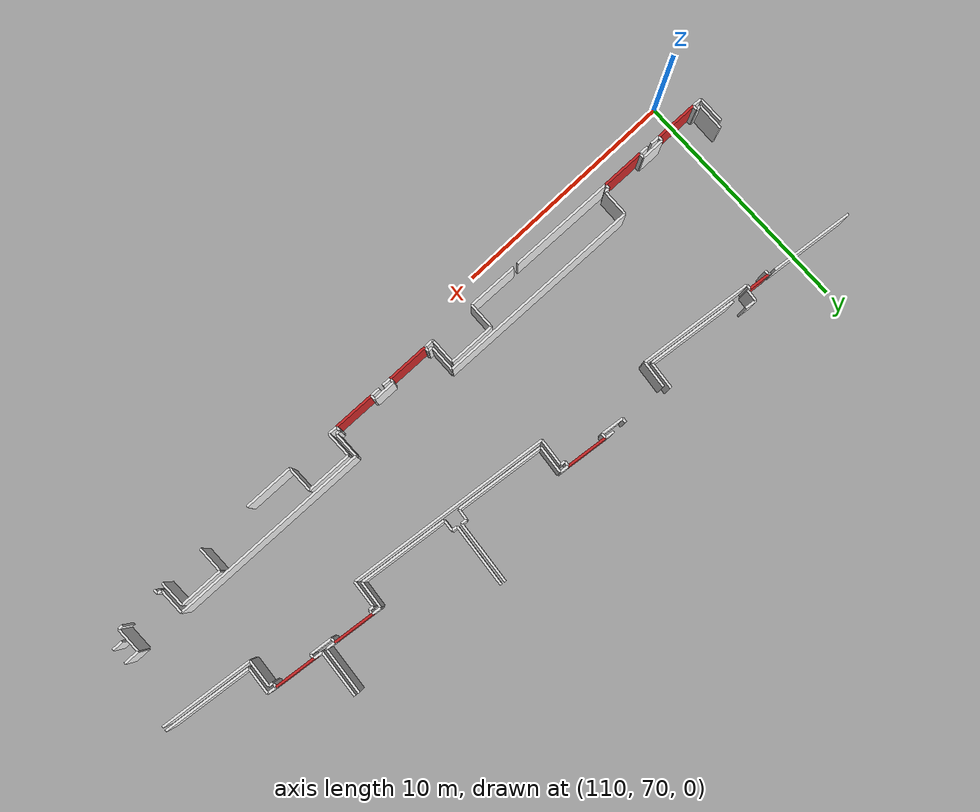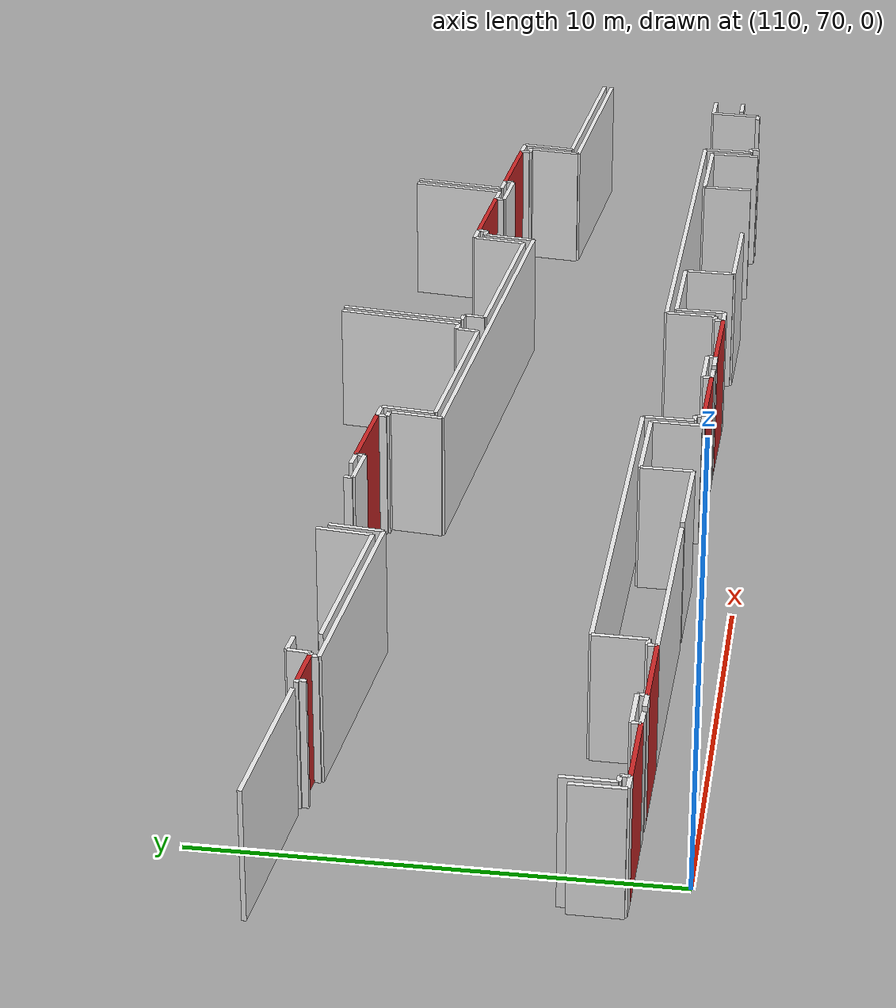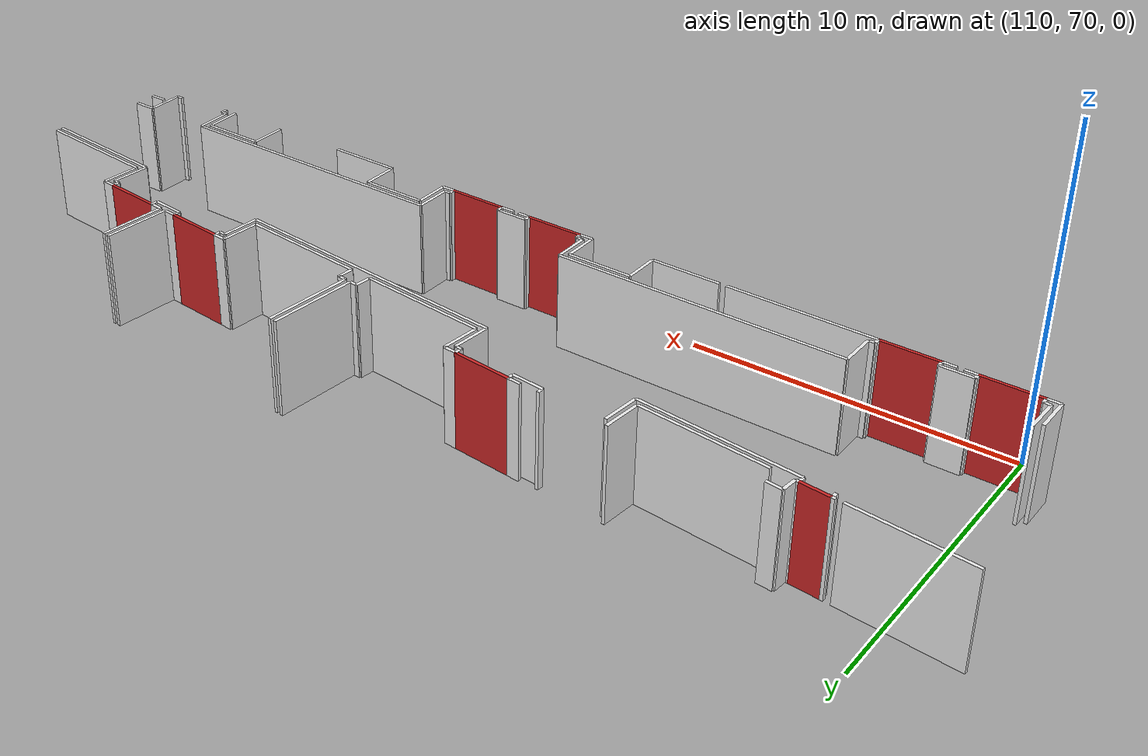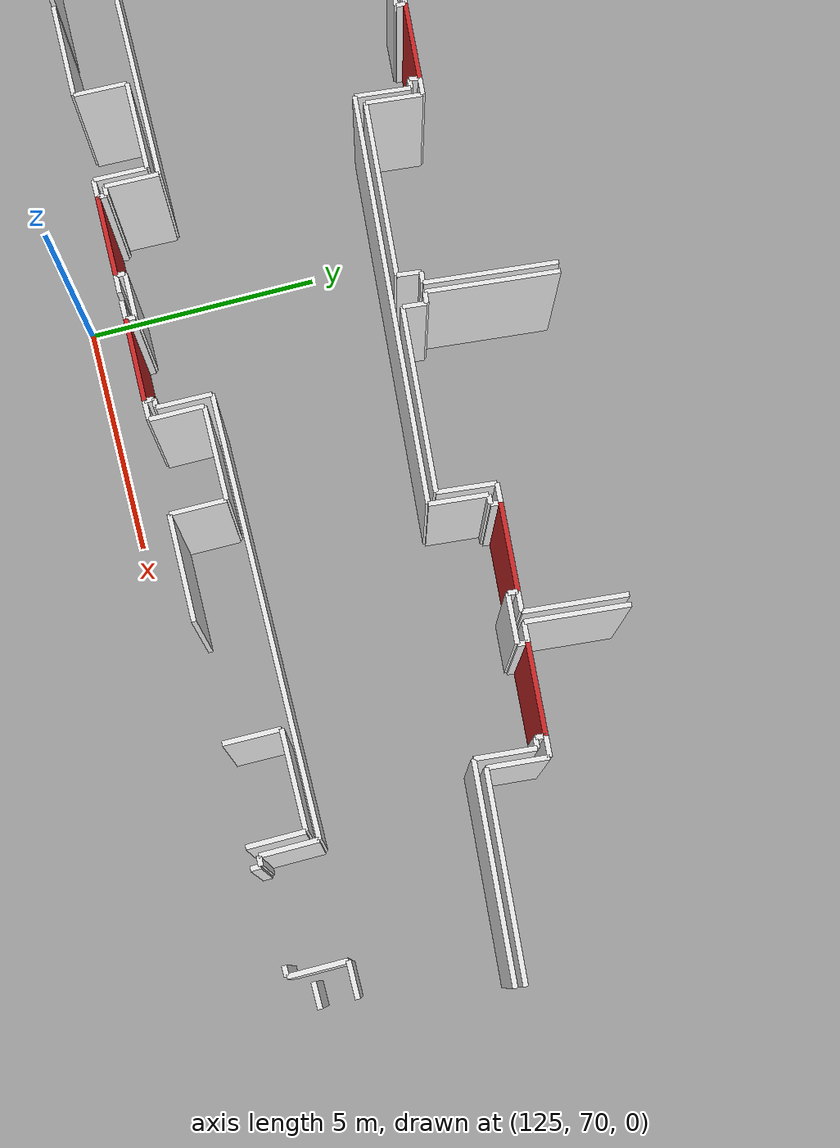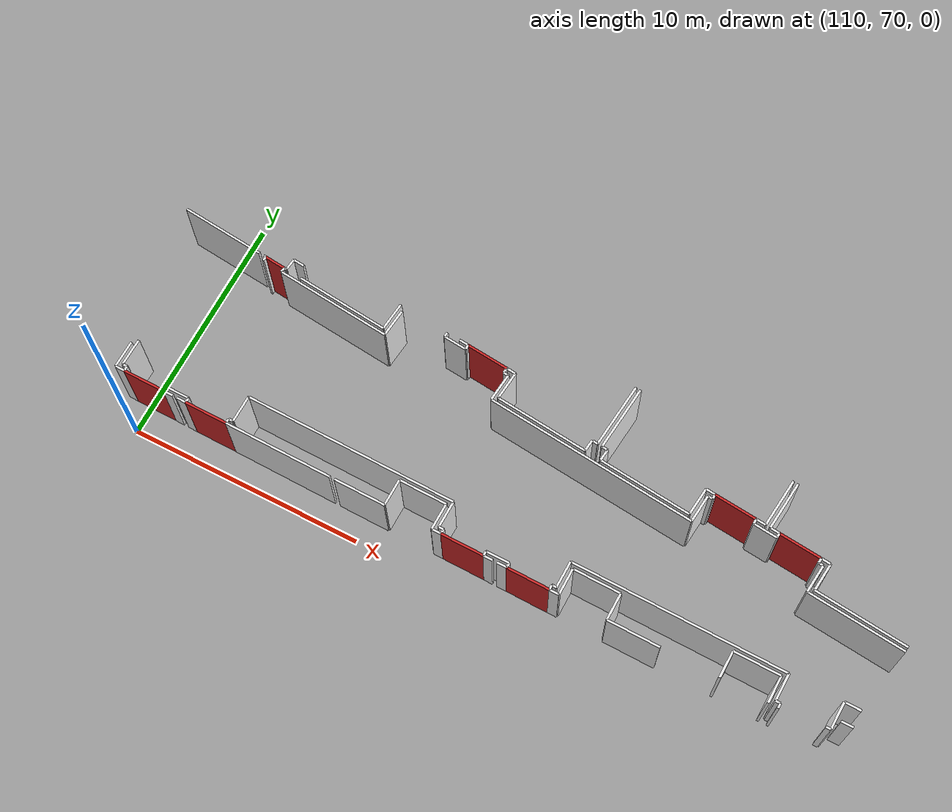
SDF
<sdf version="1.6">
 <world name="default">
  <model name="wall_135.5_76.8">
   <static>true</static>
   <pose>135.49499999999534 76.79000000003725 1.5 0 0 -0.10022174961299568</pose>
   <link name="link">
    <visual name="visual">
     <geometry><box><size>1.799027515083101 0.1 3</size></box></geometry>
     <material>
      <script><uri>file://media/materials/scripts/gazebo.material</uri><name>Gazebo/Red</name></script>
     </material>
    </visual>
   </link>
  </model>
  <model name="wall_132.7_77.1">
   <static>true</static>
   <pose>132.7049999999872 77.07000000006519 1.5 0 0 -0.10022174987377463</pose>
   <link name="link">
    <visual name="visual">
     <geometry><box><size>1.7990275150717767 0.1 3</size></box></geometry>
     <material>
      <script><uri>file://media/materials/scripts/gazebo.material</uri><name>Gazebo/Red</name></script>
     </material>
    </visual>
   </link>
  </model>
  <model name="wall_112.2_77.9">
   <static>true</static>
   <pose>112.1699999999837 77.92500000004657 1.5 0 0 -0.09966865283695012</pose>
   <link name="link">
    <visual name="visual">
     <geometry><box><size>0.9044888059555555 0.1 3</size></box></geometry>
     <material>
      <script><uri>file://media/materials/scripts/gazebo.material</uri><name>Gazebo/Red</name></script>
     </material>
    </visual>
   </link>
  </model>
  <model name="wall_121.5_78.2">
   <static>true</static>
   <pose>121.54000000000815 78.20999999996275 1.5 0 0 -0.09966865232787321</pose>
   <link name="link">
    <visual name="visual">
     <geometry><box><size>1.808977611760522 0.1 3</size></box></geometry>
     <material>
      <script><uri>file://media/materials/scripts/gazebo.material</uri><name>Gazebo/Red</name></script>
     </material>
    </visual>
   </link>
  </model>
  <model name="wall_127.1_71.0">
   <static>true</static>
   <pose>127.05000000001746 70.9550000000745 1.5 0 0 3.1249275297309125</pose>
   <link name="link">
    <visual name="visual">
     <geometry><box><size>1.8002499826340055 0.1 3</size></box></geometry>
     <material>
      <script><uri>file://media/materials/scripts/gazebo.material</uri><name>Gazebo/Red</name></script>
     </material>
    </visual>
   </link>
  </model>
  <model name="wall_124.3_71.0">
   <static>true</static>
   <pose>124.26499999998487 70.98999999999069 1.5 0 0 3.1305433795001205</pose>
   <link name="link">
    <visual name="visual">
     <geometry><box><size>1.810110493862824 0.1 3</size></box></geometry>
     <material>
      <script><uri>file://media/materials/scripts/gazebo.material</uri><name>Gazebo/Red</name></script>
     </material>
    </visual>
   </link>
  </model>
  <model name="wall_113.0_71.1">
   <static>true</static>
   <pose>113.03500000000349 71.13000000012107 1.5 0 0 3.1305433795001205</pose>
   <link name="link">
    <visual name="visual">
     <geometry><box><size>1.810110493862824 0.1 3</size></box></geometry>
     <material>
      <script><uri>file://media/materials/scripts/gazebo.material</uri><name>Gazebo/Red</name></script>
     </material>
    </visual>
   </link>
  </model>
  <model name="wall_110.2_71.2">
   <static>true</static>
   <pose>110.23500000001513 71.17000000015832 1.5 0 0 3.1305433795001205</pose>
   <link name="link">
    <visual name="visual">
     <geometry><box><size>1.810110493862824 0.1 3</size></box></geometry>
     <material>
      <script><uri>file://media/materials/scripts/gazebo.material</uri><name>Gazebo/Red</name></script>
     </material>
    </visual>
   </link>
  </model>
  <model name="wall_134.4_76.9">
   <static>true</static>
   <pose>134.39999999999418 76.89999999990687 1.5 0 0 3.0419240009977764</pose>
   <link name="link">
    <visual name="visual">
     <geometry><box><size>0.4019950248137912 0.1 3</size></box></geometry>
     <material>
      <script><uri>file://media/materials/scripts/gazebo.material</uri><name>Gazebo/White</name></script>
     </material>
    </visual>
   </link>
  </model>
  <model name="wall_134.3_78.0">
   <static>true</static>
   <pose>134.30499999999302 77.95999999996275 1.5 0 0 1.4701757469590804</pose>
   <link name="link">
    <visual name="visual">
     <geometry><box><size>2.090574083904777 0.1 3</size></box></geometry>
     <material>
      <script><uri>file://media/materials/scripts/gazebo.material</uri><name>Gazebo/White</name></script>
     </material>
    </visual>
   </link>
  </model>
  <model name="wall_138.6_75.3">
   <static>true</static>
   <pose>138.63999999998487 75.26000000000931 1.5 0 0 3.0404164645756886</pose>
   <link name="link">
    <visual name="visual">
     <geometry><box><size>3.9602525171943066 0.1 3</size></box></geometry>
     <material>
      <script><uri>file://media/materials/scripts/gazebo.material</uri><name>Gazebo/White</name></script>
     </material>
    </visual>
   </link>
  </model>
  <model name="wall_136.7_76.1">
   <static>true</static>
   <pose>136.72999999998137 76.06000000005588 1.5 0 0 1.4711276743229451</pose>
   <link name="link">
    <visual name="visual">
     <geometry><box><size>1.2059850747193837 0.1 3</size></box></geometry>
     <material>
      <script><uri>file://media/materials/scripts/gazebo.material</uri><name>Gazebo/White</name></script>
     </material>
    </visual>
   </link>
  </model>
  <model name="wall_136.6_76.7">
   <static>true</static>
   <pose>136.5899999999965 76.68000000016764 1.5 0 0 3.0419240009977764</pose>
   <link name="link">
    <visual name="visual">
     <geometry><box><size>0.4019950248137912 0.1 3</size></box></geometry>
     <material>
      <script><uri>file://media/materials/scripts/gazebo.material</uri><name>Gazebo/White</name></script>
     </material>
    </visual>
   </link>
  </model>
  <model name="wall_133.8_77.0">
   <static>true</static>
   <pose>133.79999999998836 76.95999999996275 1.5 0 0 -0.09966865257760905</pose>
   <link name="link">
    <visual name="visual">
     <geometry><box><size>0.40199502487170996 0.1 3</size></box></geometry>
     <material>
      <script><uri>file://media/materials/scripts/gazebo.material</uri><name>Gazebo/White</name></script>
     </material>
    </visual>
   </link>
  </model>
  <model name="wall_134.1_78.0">
   <static>true</static>
   <pose>134.10500000001048 77.97999999998137 1.5 0 0 1.4701757469313783</pose>
   <link name="link">
    <visual name="visual">
     <geometry><box><size>2.0905740839106244 0.1 3</size></box></geometry>
     <material>
      <script><uri>file://media/materials/scripts/gazebo.material</uri><name>Gazebo/White</name></script>
     </material>
    </visual>
   </link>
  </model>
  <model name="wall_127.3_78.3">
   <static>true</static>
   <pose>127.29000000000815 78.31000000005588 1.5 0 0 -1.6711772298577363</pose>
   <link name="link">
    <visual name="visual">
     <geometry><box><size>2.7940651390819315 0.1 3</size></box></geometry>
     <material>
      <script><uri>file://media/materials/scripts/gazebo.material</uri><name>Gazebo/White</name></script>
     </material>
    </visual>
   </link>
  </model>
  <model name="wall_127.3_76.9">
   <static>true</static>
   <pose>127.27500000002328 76.90500000002794 1.5 0 0 -0.11942892521040878</pose>
   <link name="link">
    <visual name="visual">
     <geometry><box><size>0.2517935662158716 0.1 3</size></box></geometry>
     <material>
      <script><uri>file://media/materials/scripts/gazebo.material</uri><name>Gazebo/White</name></script>
     </material>
    </visual>
   </link>
  </model>
  <model name="wall_127.4_76.6">
   <static>true</static>
   <pose>127.375 76.64500000001863 1.5 0 0 -1.6724851786059602</pose>
   <link name="link">
    <visual name="visual">
     <geometry><box><size>0.4925444144680799 0.1 3</size></box></geometry>
     <material>
      <script><uri>file://media/materials/scripts/gazebo.material</uri><name>Gazebo/White</name></script>
     </material>
    </visual>
   </link>
  </model>
  <model name="wall_129.3_76.2">
   <static>true</static>
   <pose>129.31500000000233 76.19999999995343 1.5 0 0 -0.10143187482049365</pose>
   <link name="link">
    <visual name="visual">
     <geometry><box><size>3.9503037858281362 0.1 3</size></box></geometry>
     <material>
      <script><uri>file://media/materials/scripts/gazebo.material</uri><name>Gazebo/White</name></script>
     </material>
    </visual>
   </link>
  </model>
  <model name="wall_131.3_76.6">
   <static>true</static>
   <pose>131.34500000000116 76.60000000009313 1.5 0 0 1.4628838380389488</pose>
   <link name="link">
    <visual name="visual">
     <geometry><box><size>1.2070211267550837 0.1 3</size></box></geometry>
     <material>
      <script><uri>file://media/materials/scripts/gazebo.material</uri><name>Gazebo/White</name></script>
     </material>
    </visual>
   </link>
  </model>
  <model name="wall_131.6_77.2">
   <static>true</static>
   <pose>131.60999999998603 77.18000000016764 1.5 0 0 -0.09966865257760905</pose>
   <link name="link">
    <visual name="visual">
     <geometry><box><size>0.40199502487170996 0.1 3</size></box></geometry>
     <material>
      <script><uri>file://media/materials/scripts/gazebo.material</uri><name>Gazebo/White</name></script>
     </material>
    </visual>
   </link>
  </model>
  <model name="wall_111.7_78.0">
   <static>true</static>
   <pose>111.6699999999837 77.97500000009313 1.5 0 0 -0.09966865030117082</pose>
   <link name="link">
    <visual name="visual">
     <geometry><box><size>0.10049875616580058 0.1 3</size></box></geometry>
     <material>
      <script><uri>file://media/materials/scripts/gazebo.material</uri><name>Gazebo/White</name></script>
     </material>
    </visual>
   </link>
  </model>
  <model name="wall_112.7_77.9">
   <static>true</static>
   <pose>112.6699999999837 77.875 1.5 0 0 -0.09966865030117082</pose>
   <link name="link">
    <visual name="visual">
     <geometry><box><size>0.10049875616580058 0.1 3</size></box></geometry>
     <material>
      <script><uri>file://media/materials/scripts/gazebo.material</uri><name>Gazebo/White</name></script>
     </material>
    </visual>
   </link>
  </model>
  <model name="wall_112.7_78.1">
   <static>true</static>
   <pose>112.74499999999534 78.12000000011176 1.5 0 0 1.4711276742115245</pose>
   <link name="link">
    <visual name="visual">
     <geometry><box><size>0.502493781060678 0.1 3</size></box></geometry>
     <material>
      <script><uri>file://media/materials/scripts/gazebo.material</uri><name>Gazebo/White</name></script>
     </material>
    </visual>
   </link>
  </model>
  <model name="wall_113.0_78.3">
   <static>true</static>
   <pose>113.01500000001397 78.34499999997206 1.5 0 0 -0.1016888523293181</pose>
   <link name="link">
    <visual name="visual">
     <geometry><box><size>0.49254441426008755 0.1 3</size></box></geometry>
     <material>
      <script><uri>file://media/materials/scripts/gazebo.material</uri><name>Gazebo/White</name></script>
     </material>
    </visual>
   </link>
  </model>
  <model name="wall_109.6_78.2">
   <static>true</static>
   <pose>109.61999999999534 78.17999999993481 1.5 0 0 -0.1002217497450038</pose>
   <link name="link">
    <visual name="visual">
     <geometry><box><size>3.5980550300969623 0.1 3</size></box></geometry>
     <material>
      <script><uri>file://media/materials/scripts/gazebo.material</uri><name>Gazebo/White</name></script>
     </material>
    </visual>
   </link>
  </model>
  <model name="wall_120.4_78.3">
   <static>true</static>
   <pose>120.44000000000233 78.31999999983236 1.5 0 0 -0.09966865257760905</pose>
   <link name="link">
    <visual name="visual">
     <geometry><box><size>0.40199502487170996 0.1 3</size></box></geometry>
     <material>
      <script><uri>file://media/materials/scripts/gazebo.material</uri><name>Gazebo/White</name></script>
     </material>
    </visual>
   </link>
  </model>
  <model name="wall_122.6_78.1">
   <static>true</static>
   <pose>122.63500000000931 78.10000000009313 1.5 0 0 -0.10220671819814384</pose>
   <link name="link">
    <visual name="visual">
     <geometry><box><size>0.392045915695951 0.1 3</size></box></geometry>
     <material>
      <script><uri>file://media/materials/scripts/gazebo.material</uri><name>Gazebo/White</name></script>
     </material>
    </visual>
   </link>
  </model>
  <model name="wall_122.8_77.5">
   <static>true</static>
   <pose>122.77000000001863 77.47500000009313 1.5 0 0 -1.6696466488623756</pose>
   <link name="link">
    <visual name="visual">
     <geometry><box><size>1.2159358535337013 0.1 3</size></box></geometry>
     <material>
      <script><uri>file://media/materials/scripts/gazebo.material</uri><name>Gazebo/White</name></script>
     </material>
    </visual>
   </link>
  </model>
  <model name="wall_124.7_76.7">
   <static>true</static>
   <pose>124.68000000002212 76.67000000015832 1.5 0 0 -0.10117618901410476</pose>
   <link name="link">
    <visual name="visual">
     <geometry><box><size>3.9602525171943066 0.1 3</size></box></geometry>
     <material>
      <script><uri>file://media/materials/scripts/gazebo.material</uri><name>Gazebo/White</name></script>
     </material>
    </visual>
   </link>
  </model>
  <model name="wall_126.7_76.7">
   <static>true</static>
   <pose>126.68000000002212 76.72000000020489 1.5 0 0 1.4513674007811488</pose>
   <link name="link">
    <visual name="visual">
     <geometry><box><size>0.5035871324802894 0.1 3</size></box></geometry>
     <material>
      <script><uri>file://media/materials/scripts/gazebo.material</uri><name>Gazebo/White</name></script>
     </material>
    </visual>
   </link>
  </model>
  <model name="wall_126.8_77.0">
   <static>true</static>
   <pose>126.8300000000163 76.9550000000745 1.5 0 0 -0.1243549956213644</pose>
   <link name="link">
    <visual name="visual">
     <geometry><box><size>0.24186773247205975 0.1 3</size></box></geometry>
     <material>
      <script><uri>file://media/materials/scripts/gazebo.material</uri><name>Gazebo/White</name></script>
     </material>
    </visual>
   </link>
  </model>
  <model name="wall_127.1_78.3">
   <static>true</static>
   <pose>127.08999999999651 78.3300000000745 1.5 0 0 1.470415423732057</pose>
   <link name="link">
    <visual name="visual">
     <geometry><box><size>2.7940651390819315 0.1 3</size></box></geometry>
     <material>
      <script><uri>file://media/materials/scripts/gazebo.material</uri><name>Gazebo/White</name></script>
     </material>
    </visual>
   </link>
  </model>
  <model name="wall_115.4_77.6">
   <static>true</static>
   <pose>115.38499999998021 77.5999999998603 1.5 0 0 -0.10092178464365997</pose>
   <link name="link">
    <visual name="visual">
     <geometry><box><size>3.9702015062232627 0.1 3</size></box></geometry>
     <material>
      <script><uri>file://media/materials/scripts/gazebo.material</uri><name>Gazebo/White</name></script>
     </material>
    </visual>
   </link>
  </model>
  <model name="wall_117.4_78.0">
   <static>true</static>
   <pose>117.4199999999837 78.00499999988824 1.5 0 0 1.4719460047274175</pose>
   <link name="link">
    <visual name="visual">
     <geometry><box><size>1.2159358535337013 0.1 3</size></box></geometry>
     <material>
      <script><uri>file://media/materials/scripts/gazebo.material</uri><name>Gazebo/White</name></script>
     </material>
    </visual>
   </link>
  </model>
  <model name="wall_138.5_75.1">
   <static>true</static>
   <pose>138.52000000001863 75.07499999995343 1.5 0 0 3.0428807098041264</pose>
   <link name="link">
    <visual name="visual">
     <geometry><box><size>4.1602523961721385 0.1 3</size></box></geometry>
     <material>
      <script><uri>file://media/materials/scripts/gazebo.material</uri><name>Gazebo/White</name></script>
     </material>
    </visual>
   </link>
  </model>
  <model name="wall_136.5_75.9">
   <static>true</static>
   <pose>136.5100000000093 75.87999999988824 1.5 0 0 1.4711276743229451</pose>
   <link name="link">
    <visual name="visual">
     <geometry><box><size>1.2059850747193837 0.1 3</size></box></geometry>
     <material>
      <script><uri>file://media/materials/scripts/gazebo.material</uri><name>Gazebo/White</name></script>
     </material>
    </visual>
   </link>
  </model>
  <model name="wall_136.5_76.5">
   <static>true</static>
   <pose>136.47000000000116 76.48999999999069 1.5 0 0 3.0419240010121844</pose>
   <link name="link">
    <visual name="visual">
     <geometry><box><size>0.20099751243585498 0.1 3</size></box></geometry>
     <material>
      <script><uri>file://media/materials/scripts/gazebo.material</uri><name>Gazebo/White</name></script>
     </material>
    </visual>
   </link>
  </model>
  <model name="wall_136.4_76.6">
   <static>true</static>
   <pose>136.38000000000466 76.60000000009313 1.5 0 0 1.4711276743037347</pose>
   <link name="link">
    <visual name="visual">
     <geometry><box><size>0.20099751260961132 0.1 3</size></box></geometry>
     <material>
      <script><uri>file://media/materials/scripts/gazebo.material</uri><name>Gazebo/White</name></script>
     </material>
    </visual>
   </link>
  </model>
  <model name="wall_134.6_76.8">
   <static>true</static>
   <pose>134.5899999999965 76.78000000002794 1.5 0 0 -1.6704649792284274</pose>
   <link name="link">
    <visual name="visual">
     <geometry><box><size>0.20099751214046915 0.1 3</size></box></geometry>
     <material>
      <script><uri>file://media/materials/scripts/gazebo.material</uri><name>Gazebo/White</name></script>
     </material>
    </visual>
   </link>
  </model>
  <model name="wall_134.1_76.7">
   <static>true</static>
   <pose>134.0800000000163 76.72999999998137 1.5 0 0 3.0419240014674718</pose>
   <link name="link">
    <visual name="visual">
     <geometry><box><size>1.004987562075021 0.1 3</size></box></geometry>
     <material>
      <script><uri>file://media/materials/scripts/gazebo.material</uri><name>Gazebo/White</name></script>
     </material>
    </visual>
   </link>
  </model>
  <model name="wall_133.6_76.9">
   <static>true</static>
   <pose>133.5899999999965 76.87999999988824 1.5 0 0 1.4711276745918913</pose>
   <link name="link">
    <visual name="visual">
     <geometry><box><size>0.20099751260381943 0.1 3</size></box></geometry>
     <material>
      <script><uri>file://media/materials/scripts/gazebo.material</uri><name>Gazebo/White</name></script>
     </material>
    </visual>
   </link>
  </model>
  <model name="wall_131.8_77.1">
   <static>true</static>
   <pose>131.79999999998836 77.06000000005588 1.5 0 0 -1.6704649792860586</pose>
   <link name="link">
    <visual name="visual">
     <geometry><box><size>0.20099751260961132 0.1 3</size></box></geometry>
     <material>
      <script><uri>file://media/materials/scripts/gazebo.material</uri><name>Gazebo/White</name></script>
     </material>
    </visual>
   </link>
  </model>
  <model name="wall_131.7_77.0">
   <static>true</static>
   <pose>131.69000000000233 76.96999999997206 1.5 0 0 3.0419240009833683</pose>
   <link name="link">
    <visual name="visual">
     <geometry><box><size>0.20099751237793617 0.1 3</size></box></geometry>
     <material>
      <script><uri>file://media/materials/scripts/gazebo.material</uri><name>Gazebo/White</name></script>
     </material>
    </visual>
   </link>
  </model>
  <model name="wall_131.5_76.4">
   <static>true</static>
   <pose>131.52999999999884 76.38500000000931 1.5 0 0 -1.6712969258987618</pose>
   <link name="link">
    <visual name="visual">
     <geometry><box><size>1.1960351164910918 0.1 3</size></box></geometry>
     <material>
      <script><uri>file://media/materials/scripts/gazebo.material</uri><name>Gazebo/White</name></script>
     </material>
    </visual>
   </link>
  </model>
  <model name="wall_127.0_76.2">
   <static>true</static>
   <pose>126.98499999998603 76.23999999999069 1.5 0 0 3.0415928752928885</pose>
   <link name="link">
    <visual name="visual">
     <geometry><box><size>9.01503743748916 0.1 3</size></box></geometry>
     <material>
      <script><uri>file://media/materials/scripts/gazebo.material</uri><name>Gazebo/White</name></script>
     </material>
    </visual>
   </link>
  </model>
  <model name="wall_122.6_77.3">
   <static>true</static>
   <pose>122.55999999999767 77.28499999991618 1.5 0 0 1.470295727739453</pose>
   <link name="link">
    <visual name="visual">
     <geometry><box><size>1.1960351164852516 0.1 3</size></box></geometry>
     <material>
      <script><uri>file://media/materials/scripts/gazebo.material</uri><name>Gazebo/White</name></script>
     </material>
    </visual>
   </link>
  </model>
  <model name="wall_122.5_77.9">
   <static>true</static>
   <pose>122.51499999998487 77.88999999989755 1.5 0 0 3.0466409471685547</pose>
   <link name="link">
    <visual name="visual">
     <geometry><box><size>0.21095023111991618 0.1 3</size></box></geometry>
     <material>
      <script><uri>file://media/materials/scripts/gazebo.material</uri><name>Gazebo/White</name></script>
     </material>
    </visual>
   </link>
  </model>
  <model name="wall_122.4_78.0">
   <static>true</static>
   <pose>122.42499999998836 78.01000000000931 1.5 0 0 1.4352686128093959</pose>
   <link name="link">
    <visual name="visual">
     <geometry><box><size>0.22203603331853233 0.1 3</size></box></geometry>
     <material>
      <script><uri>file://media/materials/scripts/gazebo.material</uri><name>Gazebo/White</name></script>
     </material>
    </visual>
   </link>
  </model>
  <model name="wall_120.6_78.2">
   <static>true</static>
   <pose>120.64000000001397 78.19999999995343 1.5 0 0 -1.5707963267948966</pose>
   <link name="link">
    <visual name="visual">
     <geometry><box><size>0.19999999972060323 0.1 3</size></box></geometry>
     <material>
      <script><uri>file://media/materials/scripts/gazebo.material</uri><name>Gazebo/White</name></script>
     </material>
    </visual>
   </link>
  </model>
  <model name="wall_120.1_78.2">
   <static>true</static>
   <pose>120.14500000001863 78.1500000001397 1.5 0 0 3.040924001337901</pose>
   <link name="link">
    <visual name="visual">
     <geometry><box><size>0.9950376877285535 0.1 3</size></box></geometry>
     <material>
      <script><uri>file://media/materials/scripts/gazebo.material</uri><name>Gazebo/White</name></script>
     </material>
    </visual>
   </link>
  </model>
  <model name="wall_119.7_78.3">
   <static>true</static>
   <pose>119.66000000000349 78.29500000015832 1.5 0 0 1.4659193882400832</pose>
   <link name="link">
    <visual name="visual">
     <geometry><box><size>0.19104973168571213 0.1 3</size></box></geometry>
     <material>
      <script><uri>file://media/materials/scripts/gazebo.material</uri><name>Gazebo/White</name></script>
     </material>
    </visual>
   </link>
  </model>
  <model name="wall_117.6_77.8">
   <static>true</static>
   <pose>117.59999999997672 77.78499999991618 1.5 0 0 -1.6712969258503403</pose>
   <link name="link">
    <visual name="visual">
     <geometry><box><size>1.1960351164852516 0.1 3</size></box></geometry>
     <material>
      <script><uri>file://media/materials/scripts/gazebo.material</uri><name>Gazebo/White</name></script>
     </material>
    </visual>
   </link>
  </model>
  <model name="wall_115.1_77.4">
   <static>true</static>
   <pose>115.06999999997788 77.43999999994412 1.5 0 0 3.0407215968685284</pose>
   <link name="link">
    <visual name="visual">
     <geometry><box><size>4.965239168461375 0.1 3</size></box></geometry>
     <material>
      <script><uri>file://media/materials/scripts/gazebo.material</uri><name>Gazebo/White</name></script>
     </material>
    </visual>
   </link>
  </model>
  <model name="wall_112.6_77.8">
   <static>true</static>
   <pose>112.60999999998603 77.78499999991618 1.5 0 0 1.4659193879370842</pose>
   <link name="link">
    <visual name="visual">
     <geometry><box><size>0.19104973169180559 0.1 3</size></box></geometry>
     <material>
      <script><uri>file://media/materials/scripts/gazebo.material</uri><name>Gazebo/White</name></script>
     </material>
    </visual>
   </link>
  </model>
  <model name="wall_111.7_77.9">
   <static>true</static>
   <pose>111.70999999999185 77.875 1.5 0 0 -1.6756732650945534</pose>
   <link name="link">
    <visual name="visual">
     <geometry><box><size>0.19104973214881482 0.1 3</size></box></geometry>
     <material>
      <script><uri>file://media/materials/scripts/gazebo.material</uri><name>Gazebo/White</name></script>
     </material>
    </visual>
   </link>
  </model>
  <model name="wall_109.1_72.0">
   <static>true</static>
   <pose>109.14000000001397 71.95499999984168 1.5 0 0 -1.5881858781018272</pose>
   <link name="link">
    <visual name="visual">
     <geometry><box><size>1.1501738998023476 0.1 3</size></box></geometry>
     <material>
      <script><uri>file://media/materials/scripts/gazebo.material</uri><name>Gazebo/White</name></script>
     </material>
    </visual>
   </link>
  </model>
  <model name="wall_109.2_71.4">
   <static>true</static>
   <pose>109.23000000001048 71.37999999988824 1.5 0 0 0.0</pose>
   <link name="link">
    <visual name="visual">
     <geometry><box><size>0.20000000001164153 0.1 3</size></box></geometry>
     <material>
      <script><uri>file://media/materials/scripts/gazebo.material</uri><name>Gazebo/White</name></script>
     </material>
    </visual>
   </link>
  </model>
  <model name="wall_109.3_71.3">
   <static>true</static>
   <pose>109.3300000000163 71.28000000002794 1.5 0 0 -1.5707963267948966</pose>
   <link name="link">
    <visual name="visual">
     <geometry><box><size>0.19999999972060323 0.1 3</size></box></geometry>
     <material>
      <script><uri>file://media/materials/scripts/gazebo.material</uri><name>Gazebo/White</name></script>
     </material>
    </visual>
   </link>
  </model>
  <model name="wall_111.1_71.3">
   <static>true</static>
   <pose>111.14000000001397 71.25500000012107 1.5 0 0 1.5707963267948966</pose>
   <link name="link">
    <visual name="visual">
     <geometry><box><size>0.18999999994412065 0.1 3</size></box></geometry>
     <material>
      <script><uri>file://media/materials/scripts/gazebo.material</uri><name>Gazebo/White</name></script>
     </material>
    </visual>
   </link>
  </model>
  <model name="wall_111.6_71.3">
   <static>true</static>
   <pose>111.64000000001397 71.34499999997206 1.5 0 0 -0.009999666928784895</pose>
   <link name="link">
    <visual name="visual">
     <geometry><box><size>1.0000499987524838 0.1 3</size></box></geometry>
     <material>
      <script><uri>file://media/materials/scripts/gazebo.material</uri><name>Gazebo/White</name></script>
     </material>
    </visual>
   </link>
  </model>
  <model name="wall_112.1_71.2">
   <static>true</static>
   <pose>112.13500000000931 71.23999999999069 1.5 0 0 -1.6207547226329644</pose>
   <link name="link">
    <visual name="visual">
     <geometry><box><size>0.20024984366642476 0.1 3</size></box></geometry>
     <material>
      <script><uri>file://media/materials/scripts/gazebo.material</uri><name>Gazebo/White</name></script>
     </material>
    </visual>
   </link>
  </model>
  <model name="wall_113.9_71.2">
   <static>true</static>
   <pose>113.94000000000233 71.21500000008382 1.5 0 0 1.5707963267948966</pose>
   <link name="link">
    <visual name="visual">
     <geometry><box><size>0.18999999994412065 0.1 3</size></box></geometry>
     <material>
      <script><uri>file://media/materials/scripts/gazebo.material</uri><name>Gazebo/White</name></script>
     </material>
    </visual>
   </link>
  </model>
  <model name="wall_114.0_71.3">
   <static>true</static>
   <pose>114.04000000000815 71.31000000005588 1.5 0 0 0.0</pose>
   <link name="link">
    <visual name="visual">
     <geometry><box><size>0.20000000001164153 0.1 3</size></box></geometry>
     <material>
      <script><uri>file://media/materials/scripts/gazebo.material</uri><name>Gazebo/White</name></script>
     </material>
    </visual>
   </link>
  </model>
  <model name="wall_114.1_71.9">
   <static>true</static>
   <pose>114.14999999999418 71.88500000000931 1.5 0 0 1.553406775538566</pose>
   <link name="link">
    <visual name="visual">
     <geometry><box><size>1.1501738998013356 0.1 3</size></box></geometry>
     <material>
      <script><uri>file://media/materials/scripts/gazebo.material</uri><name>Gazebo/White</name></script>
     </material>
    </visual>
   </link>
  </model>
  <model name="wall_118.7_72.4">
   <static>true</static>
   <pose>118.6699999999837 72.39500000001863 1.5 0 0 -0.01441141905839594</pose>
   <link name="link">
    <visual name="visual">
     <geometry><box><size>9.020936758469542 0.1 3</size></box></geometry>
     <material>
      <script><uri>file://media/materials/scripts/gazebo.material</uri><name>Gazebo/White</name></script>
     </material>
    </visual>
   </link>
  </model>
  <model name="wall_123.2_71.8">
   <static>true</static>
   <pose>123.1699999999837 71.76000000000931 1.5 0 0 -1.5883383868666272</pose>
   <link name="link">
    <visual name="visual">
     <geometry><box><size>1.1401754252298297 0.1 3</size></box></geometry>
     <material>
      <script><uri>file://media/materials/scripts/gazebo.material</uri><name>Gazebo/White</name></script>
     </material>
    </visual>
   </link>
  </model>
  <model name="wall_123.3_71.2">
   <static>true</static>
   <pose>123.26499999998487 71.18999999994412 1.5 0 0 0.0</pose>
   <link name="link">
    <visual name="visual">
     <geometry><box><size>0.21000000002095476 0.1 3</size></box></geometry>
     <material>
      <script><uri>file://media/materials/scripts/gazebo.material</uri><name>Gazebo/White</name></script>
     </material>
    </visual>
   </link>
  </model>
  <model name="wall_123.4_71.1">
   <static>true</static>
   <pose>123.36499999999069 71.09499999997206 1.5 0 0 -1.6233793884701562</pose>
   <link name="link">
    <visual name="visual">
     <geometry><box><size>0.19026297584909185 0.1 3</size></box></geometry>
     <material>
      <script><uri>file://media/materials/scripts/gazebo.material</uri><name>Gazebo/White</name></script>
     </material>
    </visual>
   </link>
  </model>
  <model name="wall_125.2_71.1">
   <static>true</static>
   <pose>125.1699999999837 71.07499999995343 1.5 0 0 1.5707963267948966</pose>
   <link name="link">
    <visual name="visual">
     <geometry><box><size>0.18999999994412065 0.1 3</size></box></geometry>
     <material>
      <script><uri>file://media/materials/scripts/gazebo.material</uri><name>Gazebo/White</name></script>
     </material>
    </visual>
   </link>
  </model>
  <model name="wall_125.7_71.2">
   <static>true</static>
   <pose>125.66499999997905 71.16500000003725 1.5 0 0 -0.010100666359664784</pose>
   <link name="link">
    <visual name="visual">
     <geometry><box><size>0.9900505037507377 0.1 3</size></box></geometry>
     <material>
      <script><uri>file://media/materials/scripts/gazebo.material</uri><name>Gazebo/White</name></script>
     </material>
    </visual>
   </link>
  </model>
  <model name="wall_126.2_71.1">
   <static>true</static>
   <pose>126.15499999999884 71.06500000017695 1.5 0 0 -1.6233793881646463</pose>
   <link name="link">
    <visual name="visual">
     <geometry><box><size>0.19026297584603252 0.1 3</size></box></geometry>
     <material>
      <script><uri>file://media/materials/scripts/gazebo.material</uri><name>Gazebo/White</name></script>
     </material>
    </visual>
   </link>
  </model>
  <model name="wall_128.0_71.0">
   <static>true</static>
   <pose>127.95000000001164 71.04000000003725 1.5 0 0 1.5707963267948966</pose>
   <link name="link">
    <visual name="visual">
     <geometry><box><size>0.20000000018626451 0.1 3</size></box></geometry>
     <material>
      <script><uri>file://media/materials/scripts/gazebo.material</uri><name>Gazebo/White</name></script>
     </material>
    </visual>
   </link>
  </model>
  <model name="wall_128.0_71.1">
   <static>true</static>
   <pose>128.0450000000128 71.13500000000931 1.5 0 0 -0.0525830628812194</pose>
   <link name="link">
    <visual name="visual">
     <geometry><box><size>0.19026297591945637 0.1 3</size></box></geometry>
     <material>
      <script><uri>file://media/materials/scripts/gazebo.material</uri><name>Gazebo/White</name></script>
     </material>
    </visual>
   </link>
  </model>
  <model name="wall_128.1_71.7">
   <static>true</static>
   <pose>128.14999999999418 71.69999999995343 1.5 0 0 1.5532542667742097</pose>
   <link name="link">
    <visual name="visual">
     <geometry><box><size>1.1401754252288088 0.1 3</size></box></geometry>
     <material>
      <script><uri>file://media/materials/scripts/gazebo.material</uri><name>Gazebo/White</name></script>
     </material>
    </visual>
   </link>
  </model>
  <model name="wall_132.6_72.2">
   <static>true</static>
   <pose>132.64499999998952 72.2050000000745 1.5 0 0 -0.014491739052994581</pose>
   <link name="link">
    <visual name="visual">
     <geometry><box><size>8.970941979553427 0.1 3</size></box></geometry>
     <material>
      <script><uri>file://media/materials/scripts/gazebo.material</uri><name>Gazebo/White</name></script>
     </material>
    </visual>
   </link>
  </model>
  <model name="wall_137.1_71.6">
   <static>true</static>
   <pose>137.125 71.57000000006519 1.5 0 0 -1.579568031646505</pose>
   <link name="link">
    <visual name="visual">
     <geometry><box><size>1.1400438589359028 0.1 3</size></box></geometry>
     <material>
      <script><uri>file://media/materials/scripts/gazebo.material</uri><name>Gazebo/White</name></script>
     </material>
    </visual>
   </link>
  </model>
  <model name="wall_137.2_71.0">
   <static>true</static>
   <pose>137.2149999999965 70.99500000011176 1.5 0 0 -0.052583060437140824</pose>
   <link name="link">
    <visual name="visual">
     <geometry><box><size>0.19026297589498176 0.1 3</size></box></geometry>
     <material>
      <script><uri>file://media/materials/scripts/gazebo.material</uri><name>Gazebo/White</name></script>
     </material>
    </visual>
   </link>
  </model>
  <model name="wall_137.3_70.9">
   <static>true</static>
   <pose>137.30999999999767 70.89000000013039 1.5 0 0 -1.5707963267948966</pose>
   <link name="link">
    <visual name="visual">
     <geometry><box><size>0.20000000018626451 0.1 3</size></box></geometry>
     <material>
      <script><uri>file://media/materials/scripts/gazebo.material</uri><name>Gazebo/White</name></script>
     </material>
    </visual>
   </link>
  </model>
  <model name="wall_139.2_71.0">
   <static>true</static>
   <pose>139.22000000000116 70.97000000020489 1.5 0 0 0.0</pose>
   <link name="link">
    <visual name="visual">
     <geometry><box><size>0.20000000001164153 0.1 3</size></box></geometry>
     <material>
      <script><uri>file://media/materials/scripts/gazebo.material</uri><name>Gazebo/White</name></script>
     </material>
    </visual>
   </link>
  </model>
  <model name="wall_139.3_71.5">
   <static>true</static>
   <pose>139.3300000000163 71.54000000003725 1.5 0 0 1.553254266716002</pose>
   <link name="link">
    <visual name="visual">
     <geometry><box><size>1.1401754247642402 0.1 3</size></box></geometry>
     <material>
      <script><uri>file://media/materials/scripts/gazebo.material</uri><name>Gazebo/White</name></script>
     </material>
    </visual>
   </link>
  </model>
  <model name="wall_139.7_72.1">
   <static>true</static>
   <pose>139.68500000002678 72.10499999998137 1.5 0 0 -0.014491738741580868</pose>
   <link name="link">
    <visual name="visual">
     <geometry><box><size>0.6900724599625337 0.1 3</size></box></geometry>
     <material>
      <script><uri>file://media/materials/scripts/gazebo.material</uri><name>Gazebo/White</name></script>
     </material>
    </visual>
   </link>
  </model>
  <model name="wall_139.8_71.4">
   <static>true</static>
   <pose>139.77500000002328 71.41000000014901 1.5 0 0 3.141592653589793</pose>
   <link name="link">
    <visual name="visual">
     <geometry><box><size>0.4899999999906868 0.1 3</size></box></geometry>
     <material>
      <script><uri>file://media/materials/scripts/gazebo.material</uri><name>Gazebo/White</name></script>
     </material>
    </visual>
   </link>
  </model>
  <model name="wall_116.2_71.1">
   <static>true</static>
   <pose>116.23999999999069 71.08499999996275 1.5 0 0 3.1263764366827713</pose>
   <link name="link">
    <visual name="visual">
     <geometry><box><size>4.60053257784656 0.1 3</size></box></geometry>
     <material>
      <script><uri>file://media/materials/scripts/gazebo.material</uri><name>Gazebo/White</name></script>
     </material>
    </visual>
   </link>
  </model>
  <model name="wall_111.9_71.1">
   <static>true</static>
   <pose>111.92999999999302 71.14500000001863 1.5 0 0 3.116597860530772</pose>
   <link name="link">
    <visual name="visual">
     <geometry><box><size>0.40012498049254075 0.1 3</size></box></geometry>
     <material>
      <script><uri>file://media/materials/scripts/gazebo.material</uri><name>Gazebo/White</name></script>
     </material>
    </visual>
   </link>
  </model>
  <model name="wall_125.4_71.0">
   <static>true</static>
   <pose>125.36499999999069 70.97500000009313 1.5 0 0 3.115957245641779</pose>
   <link name="link">
    <visual name="visual">
     <geometry><box><size>0.3901281840708591 0.1 3</size></box></geometry>
     <material>
      <script><uri>file://media/materials/scripts/gazebo.material</uri><name>Gazebo/White</name></script>
     </material>
    </visual>
   </link>
  </model>
  <model name="wall_123.2_71.0">
   <static>true</static>
   <pose>123.16000000000349 71.0 1.5 0 0 3.141592653589793</pose>
   <link name="link">
    <visual name="visual">
     <geometry><box><size>0.3999999999650754 0.1 3</size></box></geometry>
     <material>
      <script><uri>file://media/materials/scripts/gazebo.material</uri><name>Gazebo/White</name></script>
     </material>
    </visual>
   </link>
  </model>
  <model name="wall_123.0_71.6">
   <static>true</static>
   <pose>122.97000000000116 71.56499999994412 1.5 0 0 1.553099059570393</pose>
   <link name="link">
    <visual name="visual">
     <geometry><box><size>1.130176977179168 0.1 3</size></box></geometry>
     <material>
      <script><uri>file://media/materials/scripts/gazebo.material</uri><name>Gazebo/White</name></script>
     </material>
    </visual>
   </link>
  </model>
  <model name="wall_122.0_72.1">
   <static>true</static>
   <pose>121.96499999999651 72.14500000001863 1.5 0 0 3.12681540405365</pose>
   <link name="link">
    <visual name="visual">
     <geometry><box><size>2.0302216627483705 0.1 3</size></box></geometry>
     <material>
      <script><uri>file://media/materials/scripts/gazebo.material</uri><name>Gazebo/White</name></script>
     </material>
    </visual>
   </link>
  </model>
  <model name="wall_120.9_71.6">
   <static>true</static>
   <pose>120.94000000000233 71.59000000008382 1.5 0 0 -1.5883383868666272</pose>
   <link name="link">
    <visual name="visual">
     <geometry><box><size>1.1401754252298297 0.1 3</size></box></geometry>
     <material>
      <script><uri>file://media/materials/scripts/gazebo.material</uri><name>Gazebo/White</name></script>
     </material>
    </visual>
   </link>
  </model>
  <model name="wall_119.8_71.0">
   <static>true</static>
   <pose>119.83999999999651 71.03499999991618 1.5 0 0 3.1278320544015297</pose>
   <link name="link">
    <visual name="visual">
     <geometry><box><size>2.1802064122365232 0.1 3</size></box></geometry>
     <material>
      <script><uri>file://media/materials/scripts/gazebo.material</uri><name>Gazebo/White</name></script>
     </material>
    </visual>
   </link>
  </model>
  <model name="wall_131.4_70.9">
   <static>true</static>
   <pose>131.44999999998254 70.875 1.5 0 0 3.127957134969853</pose>
   <link name="link">
    <visual name="visual">
     <geometry><box><size>2.2002045359617974 0.1 3</size></box></geometry>
     <material>
      <script><uri>file://media/materials/scripts/gazebo.material</uri><name>Gazebo/White</name></script>
     </material>
    </visual>
   </link>
  </model>
  <model name="wall_130.4_71.5">
   <static>true</static>
   <pose>130.35499999998137 71.45999999996275 1.5 0 0 1.5620246219397054</pose>
   <link name="link">
    <visual name="visual">
     <geometry><box><size>1.1400438584702595 0.1 3</size></box></geometry>
     <material>
      <script><uri>file://media/materials/scripts/gazebo.material</uri><name>Gazebo/White</name></script>
     </material>
    </visual>
   </link>
  </model>
  <model name="wall_129.4_72.0">
   <static>true</static>
   <pose>129.35999999998603 72.0449999999255 1.5 0 0 3.126593778307587</pose>
   <link name="link">
    <visual name="visual">
     <geometry><box><size>2.0002249873490845 0.1 3</size></box></geometry>
     <material>
      <script><uri>file://media/materials/scripts/gazebo.material</uri><name>Gazebo/White</name></script>
     </material>
    </visual>
   </link>
  </model>
  <model name="wall_128.4_71.5">
   <static>true</static>
   <pose>128.35499999998137 71.5 1.5 0 0 -1.5797246609821571</pose>
   <link name="link">
    <visual name="visual">
     <geometry><box><size>1.1200446420792904 0.1 3</size></box></geometry>
     <material>
      <script><uri>file://media/materials/scripts/gazebo.material</uri><name>Gazebo/White</name></script>
     </material>
    </visual>
   </link>
  </model>
  <model name="wall_128.1_70.9">
   <static>true</static>
   <pose>128.14999999999418 70.93999999994412 1.5 0 0 3.141592653589793</pose>
   <link name="link">
    <visual name="visual">
     <geometry><box><size>0.3999999999650754 0.1 3</size></box></geometry>
     <material>
      <script><uri>file://media/materials/scripts/gazebo.material</uri><name>Gazebo/White</name></script>
     </material>
    </visual>
   </link>
  </model>
  <model name="wall_125.9_71.0">
   <static>true</static>
   <pose>125.94500000000698 70.97000000020489 1.5 0 0 3.141592653589793</pose>
   <link name="link">
    <visual name="visual">
     <geometry><box><size>0.4100000000325963 0.1 3</size></box></geometry>
     <material>
      <script><uri>file://media/materials/scripts/gazebo.material</uri><name>Gazebo/White</name></script>
     </material>
    </visual>
   </link>
  </model>
  <model name="wall_135.0_71.4">
   <static>true</static>
   <pose>134.95999999999185 71.4000000001397 1.5 0 0 1.5532542667742097</pose>
   <link name="link">
    <visual name="visual">
     <geometry><box><size>1.1401754252288088 0.1 3</size></box></geometry>
     <material>
      <script><uri>file://media/materials/scripts/gazebo.material</uri><name>Gazebo/White</name></script>
     </material>
    </visual>
   </link>
  </model>
  <model name="wall_135.9_72.0">
   <static>true</static>
   <pose>135.94499999997788 71.9550000000745 1.5 0 0 -0.015383401914200052</pose>
   <link name="link">
    <visual name="visual">
     <geometry><box><size>1.9502307555930525 0.1 3</size></box></geometry>
     <material>
      <script><uri>file://media/materials/scripts/gazebo.material</uri><name>Gazebo/White</name></script>
     </material>
    </visual>
   </link>
  </model>
  <model name="wall_136.9_71.4">
   <static>true</static>
   <pose>136.91499999997905 71.36999999987893 1.5 0 0 -1.579568031646505</pose>
   <link name="link">
    <visual name="visual">
     <geometry><box><size>1.1400438589359028 0.1 3</size></box></geometry>
     <material>
      <script><uri>file://media/materials/scripts/gazebo.material</uri><name>Gazebo/White</name></script>
     </material>
    </visual>
   </link>
  </model>
  <model name="wall_111.3_71.2">
   <static>true</static>
   <pose>111.33999999999651 71.15500000002794 1.5 0 0 3.11659785936371</pose>
   <link name="link">
    <visual name="visual">
     <geometry><box><size>0.40012498044598915 0.1 3</size></box></geometry>
     <material>
      <script><uri>file://media/materials/scripts/gazebo.material</uri><name>Gazebo/White</name></script>
     </material>
    </visual>
   </link>
  </model>
  <model name="wall_109.1_71.2">
   <static>true</static>
   <pose>109.13000000000466 71.18500000005588 1.5 0 0 3.116597860530772</pose>
   <link name="link">
    <visual name="visual">
     <geometry><box><size>0.40012498049254075 0.1 3</size></box></geometry>
     <material>
      <script><uri>file://media/materials/scripts/gazebo.material</uri><name>Gazebo/White</name></script>
     </material>
    </visual>
   </link>
  </model>
  <model name="wall_108.9_71.8">
   <static>true</static>
   <pose>108.93499999999767 71.76000000000931 1.5 0 0 1.562024621943288</pose>
   <link name="link">
    <visual name="visual">
     <geometry><box><size>1.1400438589359028 0.1 3</size></box></geometry>
     <material>
      <script><uri>file://media/materials/scripts/gazebo.material</uri><name>Gazebo/White</name></script>
     </material>
    </visual>
   </link>
  </model>
 </world>
</sdf>
